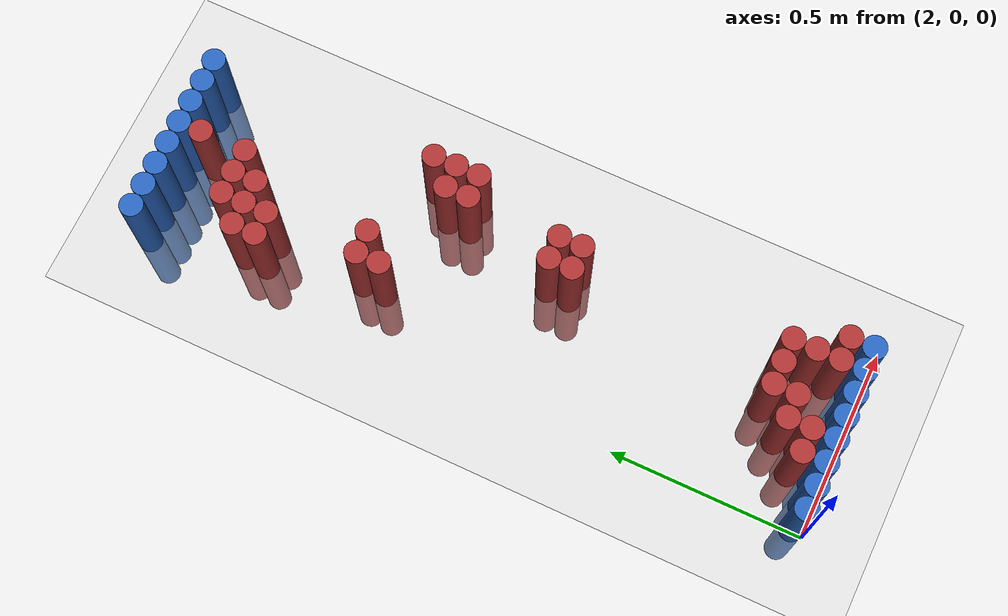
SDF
<sdf version="1.6">
 <world name="default">
  <model name="ground_plane">
   <static>1</static>
   <link name="link">
    <collision name="collision">
     <geometry><plane><normal>0 0 1</normal><size>100 100</size></plane></geometry>
     <surface><friction><ode><mu>100</mu><mu2>50</mu2></ode></friction></surface>
    </collision>
    <visual name="visual">
     <cast_shadows>0</cast_shadows>
     <geometry><plane><normal>0 0 1</normal><size>100 100</size></plane></geometry>
     <material>
      <script><uri>file://media/materials/scripts/gazebo.material</uri><name>Gazebo/Grey</name></script>
     </material>
    </visual>
   </link>
  </model>
  <model name="unit_cylinder_93">
   <static>1</static>
   <pose>2.010000 0.030000 0.000000 0.000000 0.000000 0.000000</pose>
   <link name="link">
    <inertial>
     <mass>1</mass>
     <inertia><ixx>0.145833</ixx><ixy>0</ixy><ixz>0</ixz><iyy>0.145833</iyy><iyz>0</iyz><izz>0.125</izz></inertia>
    </inertial>
    <collision name="collision">
     <geometry><cylinder><radius>0.030000</radius><length>0.5</length></cylinder></geometry>
    </collision>
    <visual name="visual">
     <geometry><cylinder><radius>0.030000</radius><length>0.5</length></cylinder></geometry>
     <material>
      <ambient>0.152000 0.379000 0.720000 1</ambient>
      <diffuse>0.152000 0.379000 0.720000 1</diffuse>
     </material>
     <material>
      <script><name>Gazebo/Grey</name><uri>file://media/materials/scripts/gazebo.material</uri></script>
     </material>
    </visual>
   </link>
  </model>
  <model name="unit_cylinder_94">
   <static>1</static>
   <pose>2.010000 1.770000 0.000000 0.000000 0.000000 0.000000</pose>
   <link name="link">
    <inertial>
     <mass>1</mass>
     <inertia><ixx>0.145833</ixx><ixy>0</ixy><ixz>0</ixz><iyy>0.145833</iyy><iyz>0</iyz><izz>0.125</izz></inertia>
    </inertial>
    <collision name="collision">
     <geometry><cylinder><radius>0.030000</radius><length>0.5</length></cylinder></geometry>
    </collision>
    <visual name="visual">
     <geometry><cylinder><radius>0.030000</radius><length>0.5</length></cylinder></geometry>
     <material>
      <ambient>0.152000 0.379000 0.720000 1</ambient>
      <diffuse>0.152000 0.379000 0.720000 1</diffuse>
     </material>
     <material>
      <script><name>Gazebo/Grey</name><uri>file://media/materials/scripts/gazebo.material</uri></script>
     </material>
    </visual>
   </link>
  </model>
  <model name="unit_cylinder_95">
   <static>1</static>
   <pose>2.070000 1.770000 0.000000 0.000000 0.000000 0.000000</pose>
   <link name="link">
    <inertial>
     <mass>1</mass>
     <inertia><ixx>0.145833</ixx><ixy>0</ixy><ixz>0</ixz><iyy>0.145833</iyy><iyz>0</iyz><izz>0.125</izz></inertia>
    </inertial>
    <collision name="collision">
     <geometry><cylinder><radius>0.030000</radius><length>0.5</length></cylinder></geometry>
    </collision>
    <visual name="visual">
     <geometry><cylinder><radius>0.030000</radius><length>0.5</length></cylinder></geometry>
     <material>
      <ambient>0.152000 0.379000 0.720000 1</ambient>
      <diffuse>0.152000 0.379000 0.720000 1</diffuse>
     </material>
     <material>
      <script><name>Gazebo/Grey</name><uri>file://media/materials/scripts/gazebo.material</uri></script>
     </material>
    </visual>
   </link>
  </model>
  <model name="unit_cylinder_96">
   <static>1</static>
   <pose>2.130000 1.770000 0.000000 0.000000 0.000000 0.000000</pose>
   <link name="link">
    <inertial>
     <mass>1</mass>
     <inertia><ixx>0.145833</ixx><ixy>0</ixy><ixz>0</ixz><iyy>0.145833</iyy><iyz>0</iyz><izz>0.125</izz></inertia>
    </inertial>
    <collision name="collision">
     <geometry><cylinder><radius>0.030000</radius><length>0.5</length></cylinder></geometry>
    </collision>
    <visual name="visual">
     <geometry><cylinder><radius>0.030000</radius><length>0.5</length></cylinder></geometry>
     <material>
      <ambient>0.152000 0.379000 0.720000 1</ambient>
      <diffuse>0.152000 0.379000 0.720000 1</diffuse>
     </material>
     <material>
      <script><name>Gazebo/Grey</name><uri>file://media/materials/scripts/gazebo.material</uri></script>
     </material>
    </visual>
   </link>
  </model>
  <model name="unit_cylinder_97">
   <static>1</static>
   <pose>2.190000 1.770000 0.000000 0.000000 0.000000 0.000000</pose>
   <link name="link">
    <inertial>
     <mass>1</mass>
     <inertia><ixx>0.145833</ixx><ixy>0</ixy><ixz>0</ixz><iyy>0.145833</iyy><iyz>0</iyz><izz>0.125</izz></inertia>
    </inertial>
    <collision name="collision">
     <geometry><cylinder><radius>0.030000</radius><length>0.5</length></cylinder></geometry>
    </collision>
    <visual name="visual">
     <geometry><cylinder><radius>0.030000</radius><length>0.5</length></cylinder></geometry>
     <material>
      <ambient>0.152000 0.379000 0.720000 1</ambient>
      <diffuse>0.152000 0.379000 0.720000 1</diffuse>
     </material>
     <material>
      <script><name>Gazebo/Grey</name><uri>file://media/materials/scripts/gazebo.material</uri></script>
     </material>
    </visual>
   </link>
  </model>
  <model name="unit_cylinder_98">
   <static>1</static>
   <pose>2.250000 1.770000 0.000000 0.000000 0.000000 0.000000</pose>
   <link name="link">
    <inertial>
     <mass>1</mass>
     <inertia><ixx>0.145833</ixx><ixy>0</ixy><ixz>0</ixz><iyy>0.145833</iyy><iyz>0</iyz><izz>0.125</izz></inertia>
    </inertial>
    <collision name="collision">
     <geometry><cylinder><radius>0.030000</radius><length>0.5</length></cylinder></geometry>
    </collision>
    <visual name="visual">
     <geometry><cylinder><radius>0.030000</radius><length>0.5</length></cylinder></geometry>
     <material>
      <ambient>0.152000 0.379000 0.720000 1</ambient>
      <diffuse>0.152000 0.379000 0.720000 1</diffuse>
     </material>
     <material>
      <script><name>Gazebo/Grey</name><uri>file://media/materials/scripts/gazebo.material</uri></script>
     </material>
    </visual>
   </link>
  </model>
  <model name="unit_cylinder_99">
   <static>1</static>
   <pose>2.310000 1.770000 0.000000 0.000000 0.000000 0.000000</pose>
   <link name="link">
    <inertial>
     <mass>1</mass>
     <inertia><ixx>0.145833</ixx><ixy>0</ixy><ixz>0</ixz><iyy>0.145833</iyy><iyz>0</iyz><izz>0.125</izz></inertia>
    </inertial>
    <collision name="collision">
     <geometry><cylinder><radius>0.030000</radius><length>0.5</length></cylinder></geometry>
    </collision>
    <visual name="visual">
     <geometry><cylinder><radius>0.030000</radius><length>0.5</length></cylinder></geometry>
     <material>
      <ambient>0.152000 0.379000 0.720000 1</ambient>
      <diffuse>0.152000 0.379000 0.720000 1</diffuse>
     </material>
     <material>
      <script><name>Gazebo/Grey</name><uri>file://media/materials/scripts/gazebo.material</uri></script>
     </material>
    </visual>
   </link>
  </model>
  <model name="unit_cylinder_100">
   <static>1</static>
   <pose>2.370000 1.770000 0.000000 0.000000 0.000000 0.000000</pose>
   <link name="link">
    <inertial>
     <mass>1</mass>
     <inertia><ixx>0.145833</ixx><ixy>0</ixy><ixz>0</ixz><iyy>0.145833</iyy><iyz>0</iyz><izz>0.125</izz></inertia>
    </inertial>
    <collision name="collision">
     <geometry><cylinder><radius>0.030000</radius><length>0.5</length></cylinder></geometry>
    </collision>
    <visual name="visual">
     <geometry><cylinder><radius>0.030000</radius><length>0.5</length></cylinder></geometry>
     <material>
      <ambient>0.152000 0.379000 0.720000 1</ambient>
      <diffuse>0.152000 0.379000 0.720000 1</diffuse>
     </material>
     <material>
      <script><name>Gazebo/Grey</name><uri>file://media/materials/scripts/gazebo.material</uri></script>
     </material>
    </visual>
   </link>
  </model>
  <model name="unit_cylinder_101">
   <static>1</static>
   <pose>2.430000 1.770000 0.000000 0.000000 0.000000 0.000000</pose>
   <link name="link">
    <inertial>
     <mass>1</mass>
     <inertia><ixx>0.145833</ixx><ixy>0</ixy><ixz>0</ixz><iyy>0.145833</iyy><iyz>0</iyz><izz>0.125</izz></inertia>
    </inertial>
    <collision name="collision">
     <geometry><cylinder><radius>0.030000</radius><length>0.5</length></cylinder></geometry>
    </collision>
    <visual name="visual">
     <geometry><cylinder><radius>0.030000</radius><length>0.5</length></cylinder></geometry>
     <material>
      <ambient>0.152000 0.379000 0.720000 1</ambient>
      <diffuse>0.152000 0.379000 0.720000 1</diffuse>
     </material>
     <material>
      <script><name>Gazebo/Grey</name><uri>file://media/materials/scripts/gazebo.material</uri></script>
     </material>
    </visual>
   </link>
  </model>
  <model name="unit_cylinder_125">
   <static>1</static>
   <pose>2.250000 1.710000 0.000000 0.000000 0.000000 0.000000</pose>
   <link name="link">
    <inertial>
     <mass>1</mass>
     <inertia><ixx>0.145833</ixx><ixy>0</ixy><ixz>0</ixz><iyy>0.145833</iyy><iyz>0</iyz><izz>0.125</izz></inertia>
    </inertial>
    <collision name="collision">
     <geometry><cylinder><radius>0.030000</radius><length>0.5</length></cylinder></geometry>
    </collision>
    <visual name="visual">
     <geometry><cylinder><radius>0.030000</radius><length>0.5</length></cylinder></geometry>
     <material>
      <ambient>0.648000 0.192000 0.192000 1</ambient>
      <diffuse>0.648000 0.192000 0.192000 1</diffuse>
     </material>
     <material>
      <script><name>Gazebo/Grey</name><uri>file://media/materials/scripts/gazebo.material</uri></script>
     </material>
    </visual>
   </link>
  </model>
  <model name="unit_cylinder_133">
   <static>1</static>
   <pose>2.130000 1.590000 0.000000 0.000000 0.000000 0.000000</pose>
   <link name="link">
    <inertial>
     <mass>1</mass>
     <inertia><ixx>0.145833</ixx><ixy>0</ixy><ixz>0</ixz><iyy>0.145833</iyy><iyz>0</iyz><izz>0.125</izz></inertia>
    </inertial>
    <collision name="collision">
     <geometry><cylinder><radius>0.030000</radius><length>0.5</length></cylinder></geometry>
    </collision>
    <visual name="visual">
     <geometry><cylinder><radius>0.030000</radius><length>0.5</length></cylinder></geometry>
     <material>
      <ambient>0.648000 0.192000 0.192000 1</ambient>
      <diffuse>0.648000 0.192000 0.192000 1</diffuse>
     </material>
     <material>
      <script><name>Gazebo/Grey</name><uri>file://media/materials/scripts/gazebo.material</uri></script>
     </material>
    </visual>
   </link>
  </model>
  <model name="unit_cylinder_134">
   <static>1</static>
   <pose>2.190000 1.590000 0.000000 0.000000 0.000000 0.000000</pose>
   <link name="link">
    <inertial>
     <mass>1</mass>
     <inertia><ixx>0.145833</ixx><ixy>0</ixy><ixz>0</ixz><iyy>0.145833</iyy><iyz>0</iyz><izz>0.125</izz></inertia>
    </inertial>
    <collision name="collision">
     <geometry><cylinder><radius>0.030000</radius><length>0.5</length></cylinder></geometry>
    </collision>
    <visual name="visual">
     <geometry><cylinder><radius>0.030000</radius><length>0.5</length></cylinder></geometry>
     <material>
      <ambient>0.648000 0.192000 0.192000 1</ambient>
      <diffuse>0.648000 0.192000 0.192000 1</diffuse>
     </material>
     <material>
      <script><name>Gazebo/Grey</name><uri>file://media/materials/scripts/gazebo.material</uri></script>
     </material>
    </visual>
   </link>
  </model>
  <model name="unit_cylinder_135">
   <static>1</static>
   <pose>2.250000 1.590000 0.000000 0.000000 0.000000 0.000000</pose>
   <link name="link">
    <inertial>
     <mass>1</mass>
     <inertia><ixx>0.145833</ixx><ixy>0</ixy><ixz>0</ixz><iyy>0.145833</iyy><iyz>0</iyz><izz>0.125</izz></inertia>
    </inertial>
    <collision name="collision">
     <geometry><cylinder><radius>0.030000</radius><length>0.5</length></cylinder></geometry>
    </collision>
    <visual name="visual">
     <geometry><cylinder><radius>0.030000</radius><length>0.5</length></cylinder></geometry>
     <material>
      <ambient>0.648000 0.192000 0.192000 1</ambient>
      <diffuse>0.648000 0.192000 0.192000 1</diffuse>
     </material>
     <material>
      <script><name>Gazebo/Grey</name><uri>file://media/materials/scripts/gazebo.material</uri></script>
     </material>
    </visual>
   </link>
  </model>
  <model name="unit_cylinder_138">
   <static>1</static>
   <pose>2.070000 1.530000 0.000000 0.000000 0.000000 0.000000</pose>
   <link name="link">
    <inertial>
     <mass>1</mass>
     <inertia><ixx>0.145833</ixx><ixy>0</ixy><ixz>0</ixz><iyy>0.145833</iyy><iyz>0</iyz><izz>0.125</izz></inertia>
    </inertial>
    <collision name="collision">
     <geometry><cylinder><radius>0.030000</radius><length>0.5</length></cylinder></geometry>
    </collision>
    <visual name="visual">
     <geometry><cylinder><radius>0.030000</radius><length>0.5</length></cylinder></geometry>
     <material>
      <ambient>0.648000 0.192000 0.192000 1</ambient>
      <diffuse>0.648000 0.192000 0.192000 1</diffuse>
     </material>
     <material>
      <script><name>Gazebo/Grey</name><uri>file://media/materials/scripts/gazebo.material</uri></script>
     </material>
    </visual>
   </link>
  </model>
  <model name="unit_cylinder_139">
   <static>1</static>
   <pose>2.130000 1.530000 0.000000 0.000000 0.000000 0.000000</pose>
   <link name="link">
    <inertial>
     <mass>1</mass>
     <inertia><ixx>0.145833</ixx><ixy>0</ixy><ixz>0</ixz><iyy>0.145833</iyy><iyz>0</iyz><izz>0.125</izz></inertia>
    </inertial>
    <collision name="collision">
     <geometry><cylinder><radius>0.030000</radius><length>0.5</length></cylinder></geometry>
    </collision>
    <visual name="visual">
     <geometry><cylinder><radius>0.030000</radius><length>0.5</length></cylinder></geometry>
     <material>
      <ambient>0.648000 0.192000 0.192000 1</ambient>
      <diffuse>0.648000 0.192000 0.192000 1</diffuse>
     </material>
     <material>
      <script><name>Gazebo/Grey</name><uri>file://media/materials/scripts/gazebo.material</uri></script>
     </material>
    </visual>
   </link>
  </model>
  <model name="unit_cylinder_140">
   <static>1</static>
   <pose>2.190000 1.530000 0.000000 0.000000 0.000000 0.000000</pose>
   <link name="link">
    <inertial>
     <mass>1</mass>
     <inertia><ixx>0.145833</ixx><ixy>0</ixy><ixz>0</ixz><iyy>0.145833</iyy><iyz>0</iyz><izz>0.125</izz></inertia>
    </inertial>
    <collision name="collision">
     <geometry><cylinder><radius>0.030000</radius><length>0.5</length></cylinder></geometry>
    </collision>
    <visual name="visual">
     <geometry><cylinder><radius>0.030000</radius><length>0.5</length></cylinder></geometry>
     <material>
      <ambient>0.648000 0.192000 0.192000 1</ambient>
      <diffuse>0.648000 0.192000 0.192000 1</diffuse>
     </material>
     <material>
      <script><name>Gazebo/Grey</name><uri>file://media/materials/scripts/gazebo.material</uri></script>
     </material>
    </visual>
   </link>
  </model>
  <model name="unit_cylinder_145">
   <static>1</static>
   <pose>2.070000 1.470000 0.000000 0.000000 0.000000 0.000000</pose>
   <link name="link">
    <inertial>
     <mass>1</mass>
     <inertia><ixx>0.145833</ixx><ixy>0</ixy><ixz>0</ixz><iyy>0.145833</iyy><iyz>0</iyz><izz>0.125</izz></inertia>
    </inertial>
    <collision name="collision">
     <geometry><cylinder><radius>0.030000</radius><length>0.5</length></cylinder></geometry>
    </collision>
    <visual name="visual">
     <geometry><cylinder><radius>0.030000</radius><length>0.5</length></cylinder></geometry>
     <material>
      <ambient>0.648000 0.192000 0.192000 1</ambient>
      <diffuse>0.648000 0.192000 0.192000 1</diffuse>
     </material>
     <material>
      <script><name>Gazebo/Grey</name><uri>file://media/materials/scripts/gazebo.material</uri></script>
     </material>
    </visual>
   </link>
  </model>
  <model name="unit_cylinder_146">
   <static>1</static>
   <pose>2.130000 1.470000 0.000000 0.000000 0.000000 0.000000</pose>
   <link name="link">
    <inertial>
     <mass>1</mass>
     <inertia><ixx>0.145833</ixx><ixy>0</ixy><ixz>0</ixz><iyy>0.145833</iyy><iyz>0</iyz><izz>0.125</izz></inertia>
    </inertial>
    <collision name="collision">
     <geometry><cylinder><radius>0.030000</radius><length>0.5</length></cylinder></geometry>
    </collision>
    <visual name="visual">
     <geometry><cylinder><radius>0.030000</radius><length>0.5</length></cylinder></geometry>
     <material>
      <ambient>0.648000 0.192000 0.192000 1</ambient>
      <diffuse>0.648000 0.192000 0.192000 1</diffuse>
     </material>
     <material>
      <script><name>Gazebo/Grey</name><uri>file://media/materials/scripts/gazebo.material</uri></script>
     </material>
    </visual>
   </link>
  </model>
  <model name="unit_cylinder_162">
   <static>1</static>
   <pose>2.130000 1.230000 0.000000 0.000000 0.000000 0.000000</pose>
   <link name="link">
    <inertial>
     <mass>1</mass>
     <inertia><ixx>0.145833</ixx><ixy>0</ixy><ixz>0</ixz><iyy>0.145833</iyy><iyz>0</iyz><izz>0.125</izz></inertia>
    </inertial>
    <collision name="collision">
     <geometry><cylinder><radius>0.030000</radius><length>0.5</length></cylinder></geometry>
    </collision>
    <visual name="visual">
     <geometry><cylinder><radius>0.030000</radius><length>0.5</length></cylinder></geometry>
     <material>
      <ambient>0.648000 0.192000 0.192000 1</ambient>
      <diffuse>0.648000 0.192000 0.192000 1</diffuse>
     </material>
     <material>
      <script><name>Gazebo/Grey</name><uri>file://media/materials/scripts/gazebo.material</uri></script>
     </material>
    </visual>
   </link>
  </model>
  <model name="unit_cylinder_163">
   <static>1</static>
   <pose>2.190000 1.230000 0.000000 0.000000 0.000000 0.000000</pose>
   <link name="link">
    <inertial>
     <mass>1</mass>
     <inertia><ixx>0.145833</ixx><ixy>0</ixy><ixz>0</ixz><iyy>0.145833</iyy><iyz>0</iyz><izz>0.125</izz></inertia>
    </inertial>
    <collision name="collision">
     <geometry><cylinder><radius>0.030000</radius><length>0.5</length></cylinder></geometry>
    </collision>
    <visual name="visual">
     <geometry><cylinder><radius>0.030000</radius><length>0.5</length></cylinder></geometry>
     <material>
      <ambient>0.648000 0.192000 0.192000 1</ambient>
      <diffuse>0.648000 0.192000 0.192000 1</diffuse>
     </material>
     <material>
      <script><name>Gazebo/Grey</name><uri>file://media/materials/scripts/gazebo.material</uri></script>
     </material>
    </visual>
   </link>
  </model>
  <model name="unit_cylinder_169">
   <static>1</static>
   <pose>2.130000 1.170000 0.000000 0.000000 0.000000 0.000000</pose>
   <link name="link">
    <inertial>
     <mass>1</mass>
     <inertia><ixx>0.145833</ixx><ixy>0</ixy><ixz>0</ixz><iyy>0.145833</iyy><iyz>0</iyz><izz>0.125</izz></inertia>
    </inertial>
    <collision name="collision">
     <geometry><cylinder><radius>0.030000</radius><length>0.5</length></cylinder></geometry>
    </collision>
    <visual name="visual">
     <geometry><cylinder><radius>0.030000</radius><length>0.5</length></cylinder></geometry>
     <material>
      <ambient>0.648000 0.192000 0.192000 1</ambient>
      <diffuse>0.648000 0.192000 0.192000 1</diffuse>
     </material>
     <material>
      <script><name>Gazebo/Grey</name><uri>file://media/materials/scripts/gazebo.material</uri></script>
     </material>
    </visual>
   </link>
  </model>
  <model name="unit_cylinder_170">
   <static>1</static>
   <pose>2.430000 1.170000 0.000000 0.000000 0.000000 0.000000</pose>
   <link name="link">
    <inertial>
     <mass>1</mass>
     <inertia><ixx>0.145833</ixx><ixy>0</ixy><ixz>0</ixz><iyy>0.145833</iyy><iyz>0</iyz><izz>0.125</izz></inertia>
    </inertial>
    <collision name="collision">
     <geometry><cylinder><radius>0.030000</radius><length>0.5</length></cylinder></geometry>
    </collision>
    <visual name="visual">
     <geometry><cylinder><radius>0.030000</radius><length>0.5</length></cylinder></geometry>
     <material>
      <ambient>0.648000 0.192000 0.192000 1</ambient>
      <diffuse>0.648000 0.192000 0.192000 1</diffuse>
     </material>
     <material>
      <script><name>Gazebo/Grey</name><uri>file://media/materials/scripts/gazebo.material</uri></script>
     </material>
    </visual>
   </link>
  </model>
  <model name="unit_cylinder_178">
   <static>1</static>
   <pose>2.370000 1.110000 0.000000 0.000000 0.000000 0.000000</pose>
   <link name="link">
    <inertial>
     <mass>1</mass>
     <inertia><ixx>0.145833</ixx><ixy>0</ixy><ixz>0</ixz><iyy>0.145833</iyy><iyz>0</iyz><izz>0.125</izz></inertia>
    </inertial>
    <collision name="collision">
     <geometry><cylinder><radius>0.030000</radius><length>0.5</length></cylinder></geometry>
    </collision>
    <visual name="visual">
     <geometry><cylinder><radius>0.030000</radius><length>0.5</length></cylinder></geometry>
     <material>
      <ambient>0.648000 0.192000 0.192000 1</ambient>
      <diffuse>0.648000 0.192000 0.192000 1</diffuse>
     </material>
     <material>
      <script><name>Gazebo/Grey</name><uri>file://media/materials/scripts/gazebo.material</uri></script>
     </material>
    </visual>
   </link>
  </model>
  <model name="unit_cylinder_179">
   <static>1</static>
   <pose>2.430000 1.110000 0.000000 0.000000 0.000000 0.000000</pose>
   <link name="link">
    <inertial>
     <mass>1</mass>
     <inertia><ixx>0.145833</ixx><ixy>0</ixy><ixz>0</ixz><iyy>0.145833</iyy><iyz>0</iyz><izz>0.125</izz></inertia>
    </inertial>
    <collision name="collision">
     <geometry><cylinder><radius>0.030000</radius><length>0.5</length></cylinder></geometry>
    </collision>
    <visual name="visual">
     <geometry><cylinder><radius>0.030000</radius><length>0.5</length></cylinder></geometry>
     <material>
      <ambient>0.648000 0.192000 0.192000 1</ambient>
      <diffuse>0.648000 0.192000 0.192000 1</diffuse>
     </material>
     <material>
      <script><name>Gazebo/Grey</name><uri>file://media/materials/scripts/gazebo.material</uri></script>
     </material>
    </visual>
   </link>
  </model>
  <model name="unit_cylinder_183">
   <static>1</static>
   <pose>2.370000 1.050000 0.000000 0.000000 0.000000 0.000000</pose>
   <link name="link">
    <inertial>
     <mass>1</mass>
     <inertia><ixx>0.145833</ixx><ixy>0</ixy><ixz>0</ixz><iyy>0.145833</iyy><iyz>0</iyz><izz>0.125</izz></inertia>
    </inertial>
    <collision name="collision">
     <geometry><cylinder><radius>0.030000</radius><length>0.5</length></cylinder></geometry>
    </collision>
    <visual name="visual">
     <geometry><cylinder><radius>0.030000</radius><length>0.5</length></cylinder></geometry>
     <material>
      <ambient>0.648000 0.192000 0.192000 1</ambient>
      <diffuse>0.648000 0.192000 0.192000 1</diffuse>
     </material>
     <material>
      <script><name>Gazebo/Grey</name><uri>file://media/materials/scripts/gazebo.material</uri></script>
     </material>
    </visual>
   </link>
  </model>
  <model name="unit_cylinder_184">
   <static>1</static>
   <pose>2.430000 1.050000 0.000000 0.000000 0.000000 0.000000</pose>
   <link name="link">
    <inertial>
     <mass>1</mass>
     <inertia><ixx>0.145833</ixx><ixy>0</ixy><ixz>0</ixz><iyy>0.145833</iyy><iyz>0</iyz><izz>0.125</izz></inertia>
    </inertial>
    <collision name="collision">
     <geometry><cylinder><radius>0.030000</radius><length>0.5</length></cylinder></geometry>
    </collision>
    <visual name="visual">
     <geometry><cylinder><radius>0.030000</radius><length>0.5</length></cylinder></geometry>
     <material>
      <ambient>0.648000 0.192000 0.192000 1</ambient>
      <diffuse>0.648000 0.192000 0.192000 1</diffuse>
     </material>
     <material>
      <script><name>Gazebo/Grey</name><uri>file://media/materials/scripts/gazebo.material</uri></script>
     </material>
    </visual>
   </link>
  </model>
  <model name="unit_cylinder_205">
   <static>1</static>
   <pose>2.310000 0.810000 0.000000 0.000000 0.000000 0.000000</pose>
   <link name="link">
    <inertial>
     <mass>1</mass>
     <inertia><ixx>0.145833</ixx><ixy>0</ixy><ixz>0</ixz><iyy>0.145833</iyy><iyz>0</iyz><izz>0.125</izz></inertia>
    </inertial>
    <collision name="collision">
     <geometry><cylinder><radius>0.030000</radius><length>0.5</length></cylinder></geometry>
    </collision>
    <visual name="visual">
     <geometry><cylinder><radius>0.030000</radius><length>0.5</length></cylinder></geometry>
     <material>
      <ambient>0.648000 0.192000 0.192000 1</ambient>
      <diffuse>0.648000 0.192000 0.192000 1</diffuse>
     </material>
     <material>
      <script><name>Gazebo/Grey</name><uri>file://media/materials/scripts/gazebo.material</uri></script>
     </material>
    </visual>
   </link>
  </model>
  <model name="unit_cylinder_206">
   <static>1</static>
   <pose>2.370000 0.810000 0.000000 0.000000 0.000000 0.000000</pose>
   <link name="link">
    <inertial>
     <mass>1</mass>
     <inertia><ixx>0.145833</ixx><ixy>0</ixy><ixz>0</ixz><iyy>0.145833</iyy><iyz>0</iyz><izz>0.125</izz></inertia>
    </inertial>
    <collision name="collision">
     <geometry><cylinder><radius>0.030000</radius><length>0.5</length></cylinder></geometry>
    </collision>
    <visual name="visual">
     <geometry><cylinder><radius>0.030000</radius><length>0.5</length></cylinder></geometry>
     <material>
      <ambient>0.648000 0.192000 0.192000 1</ambient>
      <diffuse>0.648000 0.192000 0.192000 1</diffuse>
     </material>
     <material>
      <script><name>Gazebo/Grey</name><uri>file://media/materials/scripts/gazebo.material</uri></script>
     </material>
    </visual>
   </link>
  </model>
  <model name="unit_cylinder_209">
   <static>1</static>
   <pose>2.310000 0.750000 0.000000 0.000000 0.000000 0.000000</pose>
   <link name="link">
    <inertial>
     <mass>1</mass>
     <inertia><ixx>0.145833</ixx><ixy>0</ixy><ixz>0</ixz><iyy>0.145833</iyy><iyz>0</iyz><izz>0.125</izz></inertia>
    </inertial>
    <collision name="collision">
     <geometry><cylinder><radius>0.030000</radius><length>0.5</length></cylinder></geometry>
    </collision>
    <visual name="visual">
     <geometry><cylinder><radius>0.030000</radius><length>0.5</length></cylinder></geometry>
     <material>
      <ambient>0.648000 0.192000 0.192000 1</ambient>
      <diffuse>0.648000 0.192000 0.192000 1</diffuse>
     </material>
     <material>
      <script><name>Gazebo/Grey</name><uri>file://media/materials/scripts/gazebo.material</uri></script>
     </material>
    </visual>
   </link>
  </model>
  <model name="unit_cylinder_210">
   <static>1</static>
   <pose>2.370000 0.750000 0.000000 0.000000 0.000000 0.000000</pose>
   <link name="link">
    <inertial>
     <mass>1</mass>
     <inertia><ixx>0.145833</ixx><ixy>0</ixy><ixz>0</ixz><iyy>0.145833</iyy><iyz>0</iyz><izz>0.125</izz></inertia>
    </inertial>
    <collision name="collision">
     <geometry><cylinder><radius>0.030000</radius><length>0.5</length></cylinder></geometry>
    </collision>
    <visual name="visual">
     <geometry><cylinder><radius>0.030000</radius><length>0.5</length></cylinder></geometry>
     <material>
      <ambient>0.648000 0.192000 0.192000 1</ambient>
      <diffuse>0.648000 0.192000 0.192000 1</diffuse>
     </material>
     <material>
      <script><name>Gazebo/Grey</name><uri>file://media/materials/scripts/gazebo.material</uri></script>
     </material>
    </visual>
   </link>
  </model>
  <model name="unit_cylinder_227">
   <static>1</static>
   <pose>2.250000 0.210000 0.000000 0.000000 0.000000 0.000000</pose>
   <link name="link">
    <inertial>
     <mass>1</mass>
     <inertia><ixx>0.145833</ixx><ixy>0</ixy><ixz>0</ixz><iyy>0.145833</iyy><iyz>0</iyz><izz>0.125</izz></inertia>
    </inertial>
    <collision name="collision">
     <geometry><cylinder><radius>0.030000</radius><length>0.5</length></cylinder></geometry>
    </collision>
    <visual name="visual">
     <geometry><cylinder><radius>0.030000</radius><length>0.5</length></cylinder></geometry>
     <material>
      <ambient>0.648000 0.192000 0.192000 1</ambient>
      <diffuse>0.648000 0.192000 0.192000 1</diffuse>
     </material>
     <material>
      <script><name>Gazebo/Grey</name><uri>file://media/materials/scripts/gazebo.material</uri></script>
     </material>
    </visual>
   </link>
  </model>
  <model name="unit_cylinder_228">
   <static>1</static>
   <pose>2.310000 0.210000 0.000000 0.000000 0.000000 0.000000</pose>
   <link name="link">
    <inertial>
     <mass>1</mass>
     <inertia><ixx>0.145833</ixx><ixy>0</ixy><ixz>0</ixz><iyy>0.145833</iyy><iyz>0</iyz><izz>0.125</izz></inertia>
    </inertial>
    <collision name="collision">
     <geometry><cylinder><radius>0.030000</radius><length>0.5</length></cylinder></geometry>
    </collision>
    <visual name="visual">
     <geometry><cylinder><radius>0.030000</radius><length>0.5</length></cylinder></geometry>
     <material>
      <ambient>0.648000 0.192000 0.192000 1</ambient>
      <diffuse>0.648000 0.192000 0.192000 1</diffuse>
     </material>
     <material>
      <script><name>Gazebo/Grey</name><uri>file://media/materials/scripts/gazebo.material</uri></script>
     </material>
    </visual>
   </link>
  </model>
  <model name="unit_cylinder_229">
   <static>1</static>
   <pose>2.370000 0.210000 0.000000 0.000000 0.000000 0.000000</pose>
   <link name="link">
    <inertial>
     <mass>1</mass>
     <inertia><ixx>0.145833</ixx><ixy>0</ixy><ixz>0</ixz><iyy>0.145833</iyy><iyz>0</iyz><izz>0.125</izz></inertia>
    </inertial>
    <collision name="collision">
     <geometry><cylinder><radius>0.030000</radius><length>0.5</length></cylinder></geometry>
    </collision>
    <visual name="visual">
     <geometry><cylinder><radius>0.030000</radius><length>0.5</length></cylinder></geometry>
     <material>
      <ambient>0.648000 0.192000 0.192000 1</ambient>
      <diffuse>0.648000 0.192000 0.192000 1</diffuse>
     </material>
     <material>
      <script><name>Gazebo/Grey</name><uri>file://media/materials/scripts/gazebo.material</uri></script>
     </material>
    </visual>
   </link>
  </model>
  <model name="unit_cylinder_231">
   <static>1</static>
   <pose>2.190000 0.150000 0.000000 0.000000 0.000000 0.000000</pose>
   <link name="link">
    <inertial>
     <mass>1</mass>
     <inertia><ixx>0.145833</ixx><ixy>0</ixy><ixz>0</ixz><iyy>0.145833</iyy><iyz>0</iyz><izz>0.125</izz></inertia>
    </inertial>
    <collision name="collision">
     <geometry><cylinder><radius>0.030000</radius><length>0.5</length></cylinder></geometry>
    </collision>
    <visual name="visual">
     <geometry><cylinder><radius>0.030000</radius><length>0.5</length></cylinder></geometry>
     <material>
      <ambient>0.648000 0.192000 0.192000 1</ambient>
      <diffuse>0.648000 0.192000 0.192000 1</diffuse>
     </material>
     <material>
      <script><name>Gazebo/Grey</name><uri>file://media/materials/scripts/gazebo.material</uri></script>
     </material>
    </visual>
   </link>
  </model>
  <model name="unit_cylinder_232">
   <static>1</static>
   <pose>2.250000 0.150000 0.000000 0.000000 0.000000 0.000000</pose>
   <link name="link">
    <inertial>
     <mass>1</mass>
     <inertia><ixx>0.145833</ixx><ixy>0</ixy><ixz>0</ixz><iyy>0.145833</iyy><iyz>0</iyz><izz>0.125</izz></inertia>
    </inertial>
    <collision name="collision">
     <geometry><cylinder><radius>0.030000</radius><length>0.5</length></cylinder></geometry>
    </collision>
    <visual name="visual">
     <geometry><cylinder><radius>0.030000</radius><length>0.5</length></cylinder></geometry>
     <material>
      <ambient>0.648000 0.192000 0.192000 1</ambient>
      <diffuse>0.648000 0.192000 0.192000 1</diffuse>
     </material>
     <material>
      <script><name>Gazebo/Grey</name><uri>file://media/materials/scripts/gazebo.material</uri></script>
     </material>
    </visual>
   </link>
  </model>
  <model name="unit_cylinder_233">
   <static>1</static>
   <pose>2.370000 0.150000 0.000000 0.000000 0.000000 0.000000</pose>
   <link name="link">
    <inertial>
     <mass>1</mass>
     <inertia><ixx>0.145833</ixx><ixy>0</ixy><ixz>0</ixz><iyy>0.145833</iyy><iyz>0</iyz><izz>0.125</izz></inertia>
    </inertial>
    <collision name="collision">
     <geometry><cylinder><radius>0.030000</radius><length>0.5</length></cylinder></geometry>
    </collision>
    <visual name="visual">
     <geometry><cylinder><radius>0.030000</radius><length>0.5</length></cylinder></geometry>
     <material>
      <ambient>0.648000 0.192000 0.192000 1</ambient>
      <diffuse>0.648000 0.192000 0.192000 1</diffuse>
     </material>
     <material>
      <script><name>Gazebo/Grey</name><uri>file://media/materials/scripts/gazebo.material</uri></script>
     </material>
    </visual>
   </link>
  </model>
  <model name="unit_cylinder_235">
   <static>1</static>
   <pose>2.130000 0.090000 0.000000 0.000000 0.000000 0.000000</pose>
   <link name="link">
    <inertial>
     <mass>1</mass>
     <inertia><ixx>0.145833</ixx><ixy>0</ixy><ixz>0</ixz><iyy>0.145833</iyy><iyz>0</iyz><izz>0.125</izz></inertia>
    </inertial>
    <collision name="collision">
     <geometry><cylinder><radius>0.030000</radius><length>0.5</length></cylinder></geometry>
    </collision>
    <visual name="visual">
     <geometry><cylinder><radius>0.030000</radius><length>0.5</length></cylinder></geometry>
     <material>
      <ambient>0.648000 0.192000 0.192000 1</ambient>
      <diffuse>0.648000 0.192000 0.192000 1</diffuse>
     </material>
     <material>
      <script><name>Gazebo/Grey</name><uri>file://media/materials/scripts/gazebo.material</uri></script>
     </material>
    </visual>
   </link>
  </model>
  <model name="unit_cylinder_236">
   <static>1</static>
   <pose>2.190000 0.090000 0.000000 0.000000 0.000000 0.000000</pose>
   <link name="link">
    <inertial>
     <mass>1</mass>
     <inertia><ixx>0.145833</ixx><ixy>0</ixy><ixz>0</ixz><iyy>0.145833</iyy><iyz>0</iyz><izz>0.125</izz></inertia>
    </inertial>
    <collision name="collision">
     <geometry><cylinder><radius>0.030000</radius><length>0.5</length></cylinder></geometry>
    </collision>
    <visual name="visual">
     <geometry><cylinder><radius>0.030000</radius><length>0.5</length></cylinder></geometry>
     <material>
      <ambient>0.648000 0.192000 0.192000 1</ambient>
      <diffuse>0.648000 0.192000 0.192000 1</diffuse>
     </material>
     <material>
      <script><name>Gazebo/Grey</name><uri>file://media/materials/scripts/gazebo.material</uri></script>
     </material>
    </visual>
   </link>
  </model>
  <model name="unit_cylinder_237">
   <static>1</static>
   <pose>2.370000 0.090000 0.000000 0.000000 0.000000 0.000000</pose>
   <link name="link">
    <inertial>
     <mass>1</mass>
     <inertia><ixx>0.145833</ixx><ixy>0</ixy><ixz>0</ixz><iyy>0.145833</iyy><iyz>0</iyz><izz>0.125</izz></inertia>
    </inertial>
    <collision name="collision">
     <geometry><cylinder><radius>0.030000</radius><length>0.5</length></cylinder></geometry>
    </collision>
    <visual name="visual">
     <geometry><cylinder><radius>0.030000</radius><length>0.5</length></cylinder></geometry>
     <material>
      <ambient>0.648000 0.192000 0.192000 1</ambient>
      <diffuse>0.648000 0.192000 0.192000 1</diffuse>
     </material>
     <material>
      <script><name>Gazebo/Grey</name><uri>file://media/materials/scripts/gazebo.material</uri></script>
     </material>
    </visual>
   </link>
  </model>
  <model name="unit_cylinder_238">
   <static>1</static>
   <pose>2.430000 0.090000 0.000000 0.000000 0.000000 0.000000</pose>
   <link name="link">
    <inertial>
     <mass>1</mass>
     <inertia><ixx>0.145833</ixx><ixy>0</ixy><ixz>0</ixz><iyy>0.145833</iyy><iyz>0</iyz><izz>0.125</izz></inertia>
    </inertial>
    <collision name="collision">
     <geometry><cylinder><radius>0.030000</radius><length>0.5</length></cylinder></geometry>
    </collision>
    <visual name="visual">
     <geometry><cylinder><radius>0.030000</radius><length>0.5</length></cylinder></geometry>
     <material>
      <ambient>0.648000 0.192000 0.192000 1</ambient>
      <diffuse>0.648000 0.192000 0.192000 1</diffuse>
     </material>
     <material>
      <script><name>Gazebo/Grey</name><uri>file://media/materials/scripts/gazebo.material</uri></script>
     </material>
    </visual>
   </link>
  </model>
  <model name="unit_cylinder_250">
   <static>1</static>
   <pose>2.070000 0.030000 0.000000 0.000000 0.000000 0.000000</pose>
   <link name="link">
    <inertial>
     <mass>1</mass>
     <inertia><ixx>0.145833</ixx><ixy>0</ixy><ixz>0</ixz><iyy>0.145833</iyy><iyz>0</iyz><izz>0.125</izz></inertia>
    </inertial>
    <collision name="collision">
     <geometry><cylinder><radius>0.030000</radius><length>0.5</length></cylinder></geometry>
    </collision>
    <visual name="visual">
     <geometry><cylinder><radius>0.030000</radius><length>0.5</length></cylinder></geometry>
     <material>
      <ambient>0.152000 0.379000 0.720000 1</ambient>
      <diffuse>0.152000 0.379000 0.720000 1</diffuse>
     </material>
     <material>
      <script><name>Gazebo/Grey</name><uri>file://media/materials/scripts/gazebo.material</uri></script>
     </material>
    </visual>
   </link>
  </model>
  <model name="unit_cylinder_251">
   <static>1</static>
   <pose>2.130000 0.030000 0.000000 0.000000 0.000000 0.000000</pose>
   <link name="link">
    <inertial>
     <mass>1</mass>
     <inertia><ixx>0.145833</ixx><ixy>0</ixy><ixz>0</ixz><iyy>0.145833</iyy><iyz>0</iyz><izz>0.125</izz></inertia>
    </inertial>
    <collision name="collision">
     <geometry><cylinder><radius>0.030000</radius><length>0.5</length></cylinder></geometry>
    </collision>
    <visual name="visual">
     <geometry><cylinder><radius>0.030000</radius><length>0.5</length></cylinder></geometry>
     <material>
      <ambient>0.152000 0.379000 0.720000 1</ambient>
      <diffuse>0.152000 0.379000 0.720000 1</diffuse>
     </material>
     <material>
      <script><name>Gazebo/Grey</name><uri>file://media/materials/scripts/gazebo.material</uri></script>
     </material>
    </visual>
   </link>
  </model>
  <model name="unit_cylinder_252">
   <static>1</static>
   <pose>2.190000 0.030000 0.000000 0.000000 0.000000 0.000000</pose>
   <link name="link">
    <inertial>
     <mass>1</mass>
     <inertia><ixx>0.145833</ixx><ixy>0</ixy><ixz>0</ixz><iyy>0.145833</iyy><iyz>0</iyz><izz>0.125</izz></inertia>
    </inertial>
    <collision name="collision">
     <geometry><cylinder><radius>0.030000</radius><length>0.5</length></cylinder></geometry>
    </collision>
    <visual name="visual">
     <geometry><cylinder><radius>0.030000</radius><length>0.5</length></cylinder></geometry>
     <material>
      <ambient>0.152000 0.379000 0.720000 1</ambient>
      <diffuse>0.152000 0.379000 0.720000 1</diffuse>
     </material>
     <material>
      <script><name>Gazebo/Grey</name><uri>file://media/materials/scripts/gazebo.material</uri></script>
     </material>
    </visual>
   </link>
  </model>
  <model name="unit_cylinder_253">
   <static>1</static>
   <pose>2.250000 0.030000 0.000000 0.000000 0.000000 0.000000</pose>
   <link name="link">
    <inertial>
     <mass>1</mass>
     <inertia><ixx>0.145833</ixx><ixy>0</ixy><ixz>0</ixz><iyy>0.145833</iyy><iyz>0</iyz><izz>0.125</izz></inertia>
    </inertial>
    <collision name="collision">
     <geometry><cylinder><radius>0.030000</radius><length>0.5</length></cylinder></geometry>
    </collision>
    <visual name="visual">
     <geometry><cylinder><radius>0.030000</radius><length>0.5</length></cylinder></geometry>
     <material>
      <ambient>0.152000 0.379000 0.720000 1</ambient>
      <diffuse>0.152000 0.379000 0.720000 1</diffuse>
     </material>
     <material>
      <script><name>Gazebo/Grey</name><uri>file://media/materials/scripts/gazebo.material</uri></script>
     </material>
    </visual>
   </link>
  </model>
  <model name="unit_cylinder_254">
   <static>1</static>
   <pose>2.310000 0.030000 0.000000 0.000000 0.000000 0.000000</pose>
   <link name="link">
    <inertial>
     <mass>1</mass>
     <inertia><ixx>0.145833</ixx><ixy>0</ixy><ixz>0</ixz><iyy>0.145833</iyy><iyz>0</iyz><izz>0.125</izz></inertia>
    </inertial>
    <collision name="collision">
     <geometry><cylinder><radius>0.030000</radius><length>0.5</length></cylinder></geometry>
    </collision>
    <visual name="visual">
     <geometry><cylinder><radius>0.030000</radius><length>0.5</length></cylinder></geometry>
     <material>
      <ambient>0.152000 0.379000 0.720000 1</ambient>
      <diffuse>0.152000 0.379000 0.720000 1</diffuse>
     </material>
     <material>
      <script><name>Gazebo/Grey</name><uri>file://media/materials/scripts/gazebo.material</uri></script>
     </material>
    </visual>
   </link>
  </model>
  <model name="unit_cylinder_255">
   <static>1</static>
   <pose>2.370000 0.030000 0.000000 0.000000 0.000000 0.000000</pose>
   <link name="link">
    <inertial>
     <mass>1</mass>
     <inertia><ixx>0.145833</ixx><ixy>0</ixy><ixz>0</ixz><iyy>0.145833</iyy><iyz>0</iyz><izz>0.125</izz></inertia>
    </inertial>
    <collision name="collision">
     <geometry><cylinder><radius>0.030000</radius><length>0.5</length></cylinder></geometry>
    </collision>
    <visual name="visual">
     <geometry><cylinder><radius>0.030000</radius><length>0.5</length></cylinder></geometry>
     <material>
      <ambient>0.152000 0.379000 0.720000 1</ambient>
      <diffuse>0.152000 0.379000 0.720000 1</diffuse>
     </material>
     <material>
      <script><name>Gazebo/Grey</name><uri>file://media/materials/scripts/gazebo.material</uri></script>
     </material>
    </visual>
   </link>
  </model>
  <model name="unit_cylinder_256">
   <static>1</static>
   <pose>2.430000 0.030000 0.000000 0.000000 0.000000 0.000000</pose>
   <link name="link">
    <inertial>
     <mass>1</mass>
     <inertia><ixx>0.145833</ixx><ixy>0</ixy><ixz>0</ixz><iyy>0.145833</iyy><iyz>0</iyz><izz>0.125</izz></inertia>
    </inertial>
    <collision name="collision">
     <geometry><cylinder><radius>0.030000</radius><length>0.5</length></cylinder></geometry>
    </collision>
    <visual name="visual">
     <geometry><cylinder><radius>0.030000</radius><length>0.5</length></cylinder></geometry>
     <material>
      <ambient>0.152000 0.379000 0.720000 1</ambient>
      <diffuse>0.152000 0.379000 0.720000 1</diffuse>
     </material>
     <material>
      <script><name>Gazebo/Grey</name><uri>file://media/materials/scripts/gazebo.material</uri></script>
     </material>
    </visual>
   </link>
  </model>
 </world>
</sdf>
